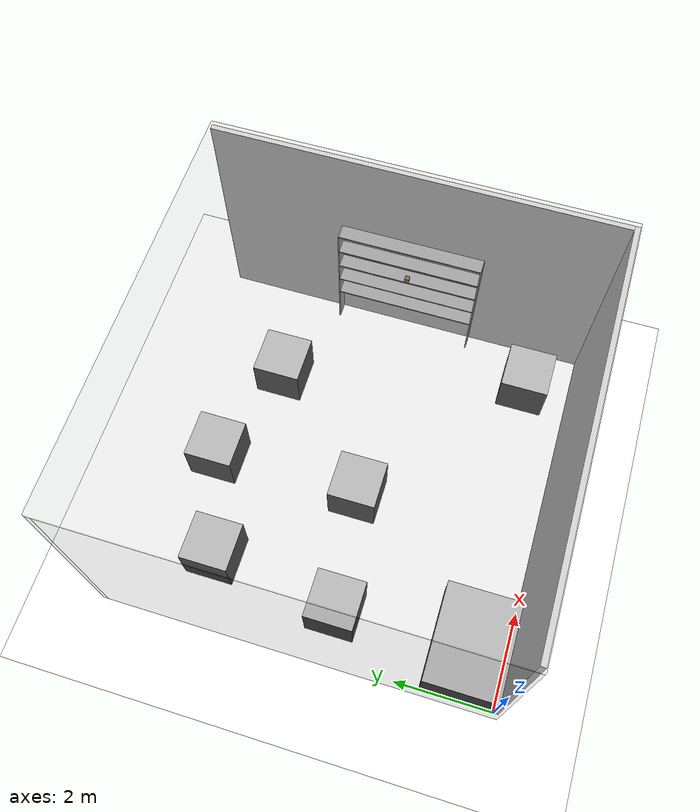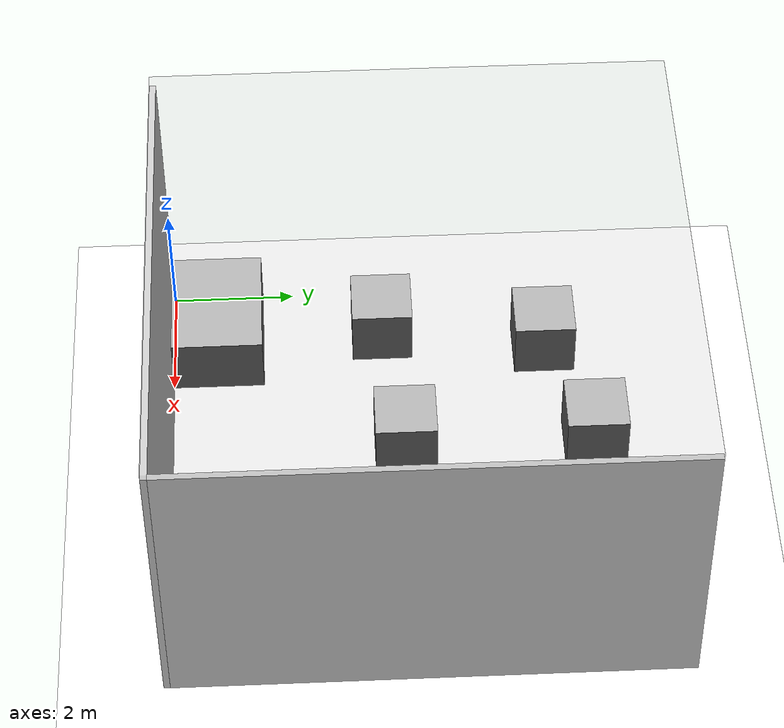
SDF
<?xml version='1.0' encoding='utf-8'?>
<sdf version='1.10'>
  <world name='DesafioDrones_v2.9'>

    <plugin name='gz::sim::systems::Physics' filename='gz-sim-physics-system'/>
    <plugin name='gz::sim::systems::UserCommands' filename='gz-sim-user-commands-system'/>
    <plugin name='gz::sim::systems::SceneBroadcaster' filename='gz-sim-scene-broadcaster-system'/>
    <plugin name='gz::sim::systems::Contact' filename='gz-sim-contact-system'/>

    <physics name='1ms' type='ignored'>
      <max_step_size>0.001</max_step_size>
      <real_time_factor>1</real_time_factor>
      <real_time_update_rate>1000</real_time_update_rate>
    </physics>
    <gravity>0 0 -9.8000000000000007</gravity>
    <magnetic_field>5.5644999999999998e-06 2.2875799999999999e-05 -4.2388400000000002e-05</magnetic_field>
    <atmosphere type='adiabatic'/>

    <scene>
      <ambient>0.400000006 0.400000006 0.400000006 1</ambient>
      <background>0.699999988 0.699999988 0.699999988 1</background>
      <sky/>
      <shadows>true</shadows>
    </scene>

    <!--Plataforma base-->
    <model name="ground_plane">
			<include>
        <uri>models/platform</uri>
      </include>
		</model>

    <!--Parede norte-->
    <model name="wall_north">
			<include>
        <uri>models/wall_transparent</uri>
      </include>
      <pose>3.95 8.05 2.5 0 0 1.5707963267948965</pose>  <!-- rotacionado por 90 graus em radianos-->
		</model>

    <!--Parede oeste-->
    <model name="wall_west">
			<include>
        <uri>models/wall_transparent</uri>
      </include>
      <pose>-0.05 3.95 2.5 0 0 0</pose>
		</model>

    <!--Parede leste -->
    <model name="wall_east">
			<include>
        <uri>models/wall</uri>
      </include>
      <pose>8.05 4.05 2.5 0 0 0</pose>
		</model>

    <!--Parede Sul-->
    <model name="wall_south">
			<include>
        <uri>models/wall</uri>
      </include>
      <pose>4.05 -0.05 2.5 0 0 -1.5707963267948965</pose>  <!-- rotacionado por -90 graus em radianos-->
		</model>

    <!--Teto-->
    <model name="ceiling">
			<include>
        <uri>models/ceiling</uri>
      </include>
		</model>

    <!--Chao-->
    <model name="ground">
			<include>
        <uri>models/ground</uri>
      </include>
		</model>

     <!--Takeoff base-->
    <model name="takeoff">
			<include>
        <uri>models/takeoff_base</uri>
      </include>
		</model>

     <!--Estante-->
    <model name="shelf">
			<include>
        <uri>models/shelf</uri>
      </include>
		</model>

    <!--6 bases moveis-->
    <model name="moving1">
			<include>
        <uri>models/moving_base</uri>
      </include>
      <pose>1.0 3.5 0.5 0 0 0</pose>
		</model>
    <model name="moving2">
			<include>
        <uri>models/moving_base</uri>
      </include>
      <pose>1.4 6.2 0.5 0 0 0</pose>
		</model>
    <model name="moving3">
			<include>
        <uri>models/moving_base</uri>
      </include>
      <pose>3.5 3.8 0.5 0 0 0</pose>
		</model>
    <model name="moving4">
			<include>
        <uri>models/moving_base</uri>
      </include>
      <pose>3.5 6.9 0.5 0 0 0</pose>
		</model>
    <model name="moving5">
			<include>
        <uri>models/moving_base</uri>
      </include>
      <pose>5.8 6.2 0.5 0 0 0</pose>
		</model>
    <model name="moving6">
			<include>
        <uri>models/moving_base</uri>
      </include>
      <pose>7 1 0.5 0 0 0</pose>
		</model>

    <!--16 caixas no futuro?-->
    <model name="caixa1">
			<include>
        <uri>models/barcode_box</uri>
      </include>
      <pose>7.75 4 2.06175 0 0 0</pose>
		</model>

    <!-- luz -->
    <light name='sun' type='directional'>
      <pose>0 0 10 0 0 0</pose>
      <cast_shadows>true</cast_shadows>
      <intensity>1</intensity>
      <direction>-0.5 0.10000000000000001 -0.90000000000000002</direction>
      <diffuse>0.800000012 0.800000012 0.800000012 1</diffuse>
      <specular>0.200000003 0.200000003 0.200000003 1</specular>
      <attenuation>
        <range>1000</range>
        <linear>0.01</linear>
        <constant>0.90000000000000002</constant>
        <quadratic>0.001</quadratic>
      </attenuation>
      <spot>
        <inner_angle>0</inner_angle>
        <outer_angle>0</outer_angle>
        <falloff>0</falloff>
      </spot>
    </light>

  </world>
</sdf>

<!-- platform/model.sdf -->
<sdf version='1.10'>
  <model name='ground_plane'>
    <static>true</static>
    <link name='link'>
      <collision name='collision'>
        <geometry>
          <plane>
            <normal>0 0 1</normal>
            <size>30 30</size>
          </plane>
        </geometry>
        <surface>
          <friction>
            <ode/>
          </friction>
          <bounce/>
          <contact/>
        </surface>
      </collision>
      <visual name='visual'>
        <geometry>
          <plane>
            <normal>0 0 1</normal>
            <size>30 30</size>
          </plane>
        </geometry>
        <material>
          <diffuse>1.0 1.0 1.0</diffuse>
          <specular>1.0 1.0 1.0</specular>
		      <pbr>
            <metal>
              <albedo_map>materials/textures/grass.jpg</albedo_map>   <!-- Grass texture-->
              <metalness> 0 </metalness>
              <roughness>0.7</roughness>
            </metal>
		      </pbr>
        </material>
      </visual>
      <pose>0 0 0 0 0 0</pose>
      <inertial>
        <pose>0 0 0 0 0 0</pose>
        <mass>1</mass>
        <inertia>
          <ixx>1</ixx>
          <ixy>0</ixy>
          <ixz>0</ixz>
          <iyy>1</iyy>
          <iyz>0</iyz>
          <izz>1</izz>
        </inertia>
      </inertial>
      <enable_wind>false</enable_wind>
    </link>
    <pose>0 0 -0.4 0 0 0</pose>
    <self_collide>false</self_collide>
  </model>
</sdf>

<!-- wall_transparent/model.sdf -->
<sdf version='1.10'>
    <model name='wall_transparent'>
      <pose>0 0 0 0 0 0</pose>
      <link name='box_link'>
        <collision name='box_collision'>
          <geometry>
            <box>
              <size>8.1 0.1 5</size>
            </box>
          </geometry>
          <surface>
            <friction>
              <ode/>
            </friction>
            <bounce/>
            <contact/>
          </surface>
        </collision>
        <visual name='box_visual'>
          <geometry>
            <box>
              <size>0.1 8.1 5</size>
            </box>
          </geometry>
          <material>
            <ambient>0.300000012 0.300000012 0.300000012 1</ambient>
            <diffuse>0.699999988 0.699999988 0.699999988 1</diffuse>
            <specular>1 1 1 1</specular>
          </material>
          <transparency> 0.95 </transparency>
          <cast_shadows>false</cast_shadows>
        </visual>
        <pose>0 0 0 0 0 0</pose>
        <enable_wind>false</enable_wind>
      </link>
      <static>true</static>
      <self_collide>false</self_collide>
    </model>
</sdf>

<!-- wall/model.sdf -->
<sdf version='1.10'>
  <model name='wall'>
    <pose>0 0 0 0 0 0</pose>
    <link name='box_link'>
      <collision name='box_collision'>
        <geometry>
          <box>
            <size>8.1 0.1 5</size>
          </box>
        </geometry>
        <surface>
          <friction>
            <ode/>
          </friction>
          <bounce/>
          <contact/>
        </surface>
      </collision>
      <visual name='box_visual'>
        <geometry>
          <box>
            <size>0.1 8.1 5</size>
          </box>
        </geometry>
        <material>
          <ambient>0.827 0.827 0.827 1.0</ambient>
          <diffuse>0.827 0.827 0.827 1.0</diffuse>
          <specular>0.827 0.827 0.827 1.0</specular>
        </material>
        <cast_shadows>false</cast_shadows>
      </visual>
      <visual name='image'>
        <pose>-0.0501 0 0 0 0 0</pose>
        <geometry>
          <box>
            <size>0.000001 8.1 5</size>
          </box>
        </geometry>
        <material>
          <diffuse>0.7 0.7 0.7 1</diffuse>
          <specular>1 1 1 1</specular>
          <pbr>
            <metal>
              <albedo_map>materials/textures/robocup_logo.png</albedo_map>   <!--Takeoff base image-->
              <metalness> 0 </metalness>
              <roughness>0.5</roughness>
            </metal>
          </pbr>
      </material>
      <cast_shadows>false</cast_shadows>
    </visual>
      <pose>0 0 0 0 0 0</pose>
      <enable_wind>false</enable_wind>
    </link>
    <static>true</static>
    <self_collide>false</self_collide>
  </model>
</sdf>

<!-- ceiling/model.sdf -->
<sdf version='1.10'>
  <model name='ceiling'>
    <pose>4 4 5.05 0 0 0</pose>
    <link name='box_link'>
      <collision name='box_collision'>
        <geometry>
          <box>
            <size>8.2 8.2 0.1</size>
          </box>
        </geometry>
        <surface>
          <friction>
            <ode/>
          </friction>
          <bounce/>
          <contact/>
        </surface>
      </collision>
      <visual name='box_visual'>
        <geometry>
          <box>
            <size>8.2 8.2 0.1</size>
          </box>
        </geometry>
        <material>
          <ambient>0.300000012 0.300000012 0.300000012 1</ambient>
          <diffuse>0.699999988 0.699999988 0.699999988 1</diffuse>
          <specular>1 1 1 1</specular>
        </material>
        <transparency> 0.95 </transparency>
        <cast_shadows>false</cast_shadows>
      </visual>
      <pose>0 0 0 0 0 0</pose>
      <enable_wind>false</enable_wind>
    </link>
    <static>true</static>
    <self_collide>false</self_collide>
  </model>
</sdf>

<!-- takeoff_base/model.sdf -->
<sdf version='1.10'>
<model name='base_takeoff'>
  <pose>1 0.75 0.5  0 0 0</pose>
  <link name='box_link'>
    <collision name='box_collision'>
      <geometry>
        <box>
          <size>2 1.5 1</size>
        </box>
      </geometry>
      <surface>
        <friction>
          <ode/>
        </friction>
        <bounce/>
        <contact/>
      </surface>
    </collision>
    <visual name='visual'>
      <geometry>
        <box>
          <size>2 1.5 0.999</size>
        </box>
      </geometry>
      <material>
        <ambient>0.175 0.175 0.175  1.0</ambient> <!-- dark grey -->
        <diffuse>0.175 0.175 0.175  1.0</diffuse>
        <specular>1 1 1 1</specular>
      </material>
    </visual>
    <visual name='image'>
      <pose>0 0 0.5 0 0 0</pose>
        <geometry>
          <box>
            <size>2 1.5 0.001</size>
          </box>
        </geometry>
        <material>
        <diffuse>0.7 0.7 0.7 1</diffuse>
        <specular>1 1 1 1</specular>
        <pbr>
            <metal>
              <albedo_map>materials/textures/base_takeoff.png</albedo_map>   <!--Takeoff base image-->
              <metalness> 0 </metalness>
              <roughness>1</roughness>
            </metal>
		      </pbr>
      </material>
      </visual>
    <pose>0 0 0 0 0 0</pose>
    <enable_wind>false</enable_wind>
  </link>
  <static>true</static>
  <self_collide>false</self_collide>
</model>
</sdf>

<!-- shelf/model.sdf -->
<sdf version='1.10'>
<model name='estante'>
  <pose>7.85 4 1.5 0 0 0</pose>
  <link name='link'>

    <collision name='shelf1_collision'>
      <pose>0 0 -0.5 0 0 0</pose>
      <geometry>
        <box>
          <size>0.3 3 0.025</size>
        </box>
      </geometry>
    </collision>
    <collision name='shelf2_collision'>
      <pose>0 0 0 0 0 0</pose>
      <geometry>
        <box>
          <size>0.3 3 0.025</size>
        </box>
      </geometry>
    </collision>
    <collision name='shelf3_collision'>
      <pose>0 0 0.5 0 0 0</pose>
      <geometry>
        <box>
          <size>0.3 3 0.025</size>
        </box>
      </geometry>
    </collision>
    <collision name='shelf4_collision'>
      <pose>0 0 1 0 0 0</pose>
      <geometry>
        <box>
          <size>0.3 3 0.025</size>
        </box>
      </geometry>
    </collision>
    <collision name='shelf5_collision'>
      <pose>0 0 1.5 0 0 0</pose>
      <geometry>
        <box>
          <size>0.3 3 0.025</size>
        </box>
      </geometry>
    </collision>
    <collision name='side1_collision'>
      <pose>0 -1.5 0 0 0 0</pose>
      <geometry>
        <box>
          <size>0.3 0.025 3.025</size>
        </box>
      </geometry>
    </collision>
    <collision name='side2_collision'>
      <pose>0 1.5 0 0 0 0</pose>
      <geometry>
        <box>
          <size>0.3 0.025 3.025</size>
        </box>
      </geometry>
    </collision>

    <visual name='shelf1'>
      <pose>0 0 -0.5 0 0 0</pose>
      <geometry>
        <box>
          <size>0.3 3 0.025</size>
        </box>
      </geometry>
      <material>
        <ambient>0.6 0.6 0.6 1.0</ambient> <!-- Light grey -->
        <diffuse>0.6 0.6 0.6 1.0</diffuse>
        <specular>0.2 0.2 0.2 1.0</specular>
      </material>
    </visual>
    <visual name='shelf2'>
      <pose>0 0 0 0 0 0</pose>
      <geometry>
        <box>
          <size>0.3 3 0.025</size>
        </box>
      </geometry>
      <material>
        <ambient>0.6 0.6 0.6 1.0</ambient> <!-- Light grey -->
        <diffuse>0.6 0.6 0.6 1.0</diffuse>
        <specular>0.2 0.2 0.2 1.0</specular>
      </material>
    </visual>
    <visual name='shelf3'>
      <pose>0 0 0.5 0 0 0</pose>
      <geometry>
        <box>
          <size>0.3 3 0.025</size>
        </box>
      </geometry>
      <material>
        <ambient>0.6 0.6 0.6 1.0</ambient> <!-- Light grey -->
        <diffuse>0.6 0.6 0.6 1.0</diffuse>
        <specular>0.2 0.2 0.2 1.0</specular>
      </material>
    </visual>
    <visual name='shelf4'>
      <pose>0 0 1 0 0 0</pose>
      <geometry>
        <box>
          <size>0.3 3 0.025</size>
        </box>
      </geometry>
      <material>
        <ambient>0.6 0.6 0.6 1.0</ambient> <!-- Light grey -->
        <diffuse>0.6 0.6 0.6 1.0</diffuse>
        <specular>0.2 0.2 0.2 1.0</specular>
      </material>
    </visual>
    <visual name='shelf5'>
      <pose>0 0 1.5 0 0 0</pose>
      <geometry>
        <box>
          <size>0.3 3 0.025</size>
        </box>
      </geometry>
      <material>
        <ambient>0.6 0.6 0.6 1.0</ambient> <!-- Light grey -->
        <diffuse>0.6 0.6 0.6 1.0</diffuse>
        <specular>0.2 0.2 0.2 1.0</specular>
      </material>
    </visual>
    <visual name='side1'>
      <pose>0 -1.5 0 0 0 0</pose>
      <geometry>
        <box>
          <size>0.3 0.025 3.025</size>
        </box>
      </geometry>
      <material>
        <ambient>0.6 0.6 0.6 1.0</ambient> <!-- Light grey -->
        <diffuse>0.6 0.6 0.6 1.0</diffuse>
        <specular>0.2 0.2 0.2 1.0</specular>
      </material>
    </visual>
    <visual name='side2'>
      <pose>0 1.5 0 0 0 0</pose>
      <geometry>
        <box>
          <size>0.3 0.025 3.025</size>
        </box>
      </geometry>
      <material>
        <ambient>0.6 0.6 0.6 1.0</ambient> <!-- Light grey -->
        <diffuse>0.6 0.6 0.6 1.0</diffuse>
        <specular>0.2 0.2 0.2 1.0</specular>
      </material>
    </visual>
    <pose>0 0 0 0 0 0</pose>
    <enable_wind>false</enable_wind>
  </link>
  <static>true</static>
  <self_collide>false</self_collide>
</model>
</sdf>

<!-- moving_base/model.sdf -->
<sdf version='1.10'>
<model name='base_takeoff'>
  <pose>0 0 0 0 0 0</pose>
  <link name='box_link'>
    <collision name='box_collision'>
      <geometry>
        <box>
          <size>2 1.5 1</size>
        </box>
      </geometry>
      <surface>
        <friction>
          <ode/>
        </friction>
        <bounce/>
        <contact/>
      </surface>
    </collision>
    <visual name='visual'>
      <geometry>
        <box>
          <size>1 1 0.999</size>
        </box>
      </geometry>
      <material>
        <ambient>0.175 0.175 0.175  1.0</ambient> <!-- dark grey -->
        <diffuse>0.175 0.175 0.175  1.0</diffuse>
        <specular>1 1 1 1</specular>
      </material>
    </visual>
    <visual name='image'>
      <pose>0 0 0.5 0 0 0</pose>
        <geometry>
          <box>
            <size>1 1 0.001</size>
          </box>
        </geometry>
        <material>
        <diffuse>0.7 0.7 0.7 1</diffuse>
        <specular>1 1 1 1</specular>
        <pbr>
            <metal>
              <albedo_map>materials/textures/base_suspensa.png</albedo_map>   <!--Takeoff base image-->
              <metalness> 0 </metalness>
              <roughness>1</roughness>
            </metal>
		      </pbr>
      </material>
      </visual>
    <pose>0 0 0 0 0 0</pose>
    <enable_wind>false</enable_wind>
  </link>
  <static>true</static>
  <self_collide>false</self_collide>
</model>
</sdf>

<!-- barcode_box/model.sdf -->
<sdf version='1.10'>
<model name='box'>
  <pose>0 0 0 0 0 0</pose>
  <link name='box_link'>
    <collision name='box_collision'>
      <geometry>
        <box>
          <size>0.1 0.1 0.1</size>
        </box>
      </geometry>
      <surface>
        <friction>
          <ode/>
        </friction>
        <bounce/>
        <contact/>
      </surface>
    </collision>
    <visual name='visual'>
      <geometry>
        <box>
          <size>0.099 0.1 0.1</size>
        </box>
      </geometry>
      <material>
         <ambient>0.388 0.337 0.271 1.0</ambient>
         <diffuse>0.388 0.337 0.271 1.0</diffuse>
         <specular>1 1 1 1</specular>
      </material>
    </visual>
    <pose>0 0 0 0 0 0</pose>
    <enable_wind>false</enable_wind>
  </link>
  <static>true</static>
  <self_collide>false</self_collide>
</model>
</sdf>
